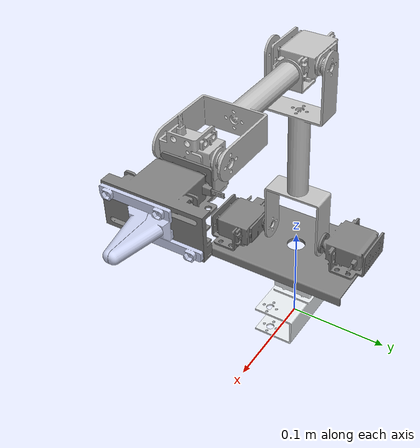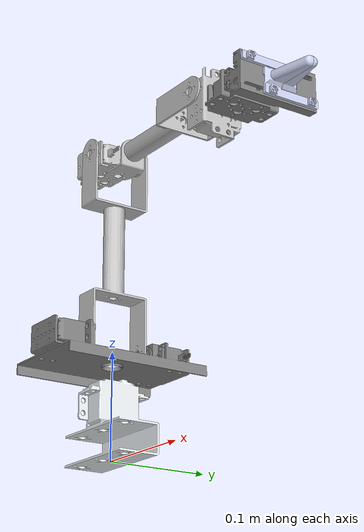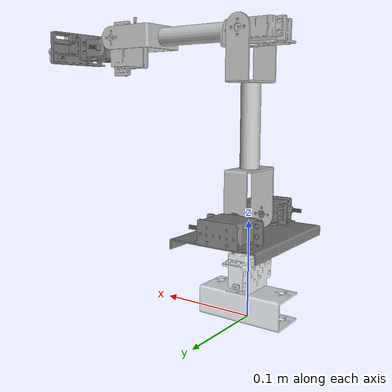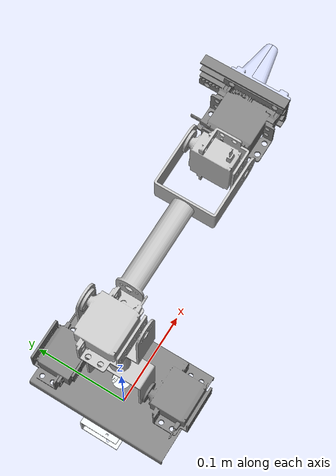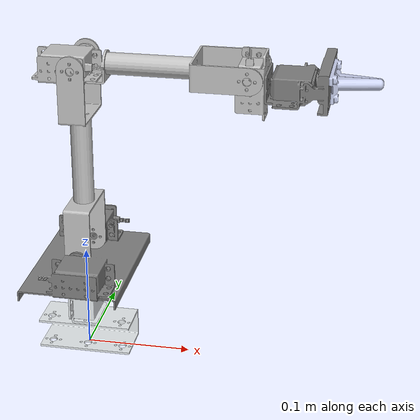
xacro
<?xml version="1.0"?>
<robot xmlns:xacro="http://www.ros.org/wiki/xacro" name="chessaton">
    <xacro:arg name="initial_positions_file" default="initial_positions.yaml" />

    <!-- Import chessaton urdf file -->
    <xacro:include filename="$(find chessaton_description)/urdf/chessaton.urdf.xacro" />

    <!-- Import control_xacro -->
    <xacro:include filename="chessaton.ros2_control.xacro" />

    <xacro:chessaton_ros2_control name="FakeSystem" initial_positions_file="$(arg initial_positions_file)"/>

</robot>

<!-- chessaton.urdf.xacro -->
<robot xmlns:xacro="http://www.ros.org/wiki/xacro"
    xmlns:sensor="http://playerstage.sourceforge.net/gazebo/xmlschema/#sensor"
    xmlns:controller="http://playerstage.sourceforge.net/gazebo/xmlschema/#controller"
    xmlns:interface="http://playerstage.sourceforge.net/gazebo/xmlschema/#interface"
    name="chessaton">

    <xacro:include filename="$(find chessaton_description)/urdf/chessaton_include.xacro" />
    <xacro:include filename="$(find chessaton_description)/urdf/chessaton_gazebo.xacro" />
    <xacro:include filename="$(find chessaton_description)/urdf/chessaton.ros2_control" />
    <xacro:include filename="$(find chessaton_description)/urdf/chessaton_hand.xacro" />
    <xacro:include filename="$(find chessaton_description)/urdf/sensors/camera.urdf.xacro" />

    <!-- Parameters -->
    <!-- Name of the robot (mandatory) -->
    <xacro:arg name="name" default="chessaton"/>
    <!-- Prefix for all entities -->
    <xacro:arg name="prefix" default="chessaton_"/>
    <!-- Flag to enable default gripper -->
    <xacro:arg name="gripper" default="true" />
    <xacro:arg name="virtual_dof" default="true" />
    <!-- Flag to enable camera -->
    <xacro:arg name="use_camera" default="false" />
    <!-- ros2_control -->
    <!-- Flag to enable ros2 controllers for manipulator -->
    <xacro:arg name="ros2_control" default="true"/>
    <!-- The ros2_control plugin that should be loaded for the manipulator ('fake', 'gz', 'real' or custom) -->
    <xacro:arg name="ros2_control_plugin" default="gz"/>
    <!-- The output control command interface provided by ros2_control ('position', 'velocity', 'effort' or certain combinations 'position,velocity') -->
    <xacro:arg name="ros2_control_command_interface" default="position"/>
    <!-- The filepath to parameters of ROS 2 controllers -->
    <xacro:arg name="ros2_controller_parameters" default="$(find chessaton_description)/config/controllers_$(arg ros2_control_command_interface).yaml"/>
    <!-- Flag to preserve fixed joints and prevent lumping when generating SDF for Gazebo -->
    <xacro:arg name="gazebo_preserve_fixed_joint" default="false"/>

    <link name="world"></link>

    <joint name="virtual_joint" type="fixed">
        <origin xyz="0 0 0" rpy="0 0 0" />
        <parent link="world" />
        <child link="chessaton_link0" />
    </joint>

    <link name="chessaton_link0">
        <visual>
            <origin xyz="0 0 0" rpy="0 0 0" />
            <geometry>
              <mesh filename="file://$(find chessaton_description)/meshes/chessaton_link0.STL" />
            </geometry>
            <material name="color_link0" />
        </visual>

        <collision>
          <origin xyz="0 0 0" rpy="0 0 0" />
          <geometry>
            <mesh filename="file://$(find chessaton_description)/meshes/chessaton_link0.STL" />
          </geometry>
        </collision>

        <inertial>
            <origin xyz="-0.00088323 -3.593E-07 0.021799" rpy="0 0 0" />
            <mass value="0.35" />
            <inertia
                ixx="0.00040857"
                ixy="-1.2568E-09"
                ixz="-4.0915E-09"
                iyy="0.00041214"
                iyz="1.5948E-10"
                izz="0.00079973" />
        </inertial>
    </link>

    <joint name="chessaton_joint1" type="revolute">
        <origin xyz="0 0 0.07184" rpy="0 0 0" />
        <parent link="chessaton_link0" />
        <child link="chessaton_link1" />
        <axis xyz="0 0 -1" />
		<dynamics damping="0.1" friction="0.1" />
        <limit lower="${-pi/2}" upper="${pi/2}" effort="0" velocity="0.3" />
    </joint>

    <link name="chessaton_link1">
        <visual>
          <origin xyz="0 0 0" rpy="0 0 0" />
          <geometry>
            <mesh filename="file://$(find chessaton_description)/meshes/chessaton_link1.STL" />
          </geometry>
          <material name="color_link1" />
        </visual>

        <collision>
          <origin xyz="0 0 0" rpy="0 0 0" />
          <geometry>
            <mesh filename="file://$(find chessaton_description)/meshes/chessaton_link1.STL" />
          </geometry>
        </collision>

        <inertial>
            <origin xyz="-2.4829E-06 1.8095E-11 0.025578" rpy="0 0 0" />
            <mass value="0.116" />
            <inertia
              ixx="5.4663E-05"
              ixy="-1.3316E-07"
              ixz="3.3526E-14"
              iyy="4.2517E-05"
              iyz="-8.2983E-14"
              izz="8.9443E-05" />
        </inertial>
    </link>

	<joint name="chessaton_joint2" type="revolute">
		<origin xyz="0 1.29770906784333E-05 0.0305688591051693" rpy="0 0 0" />
		<parent link="chessaton_link1" />
		<child link="chessaton_link2" />
		<axis xyz="0 1 0" />
		<dynamics damping="0.1" friction="0.1" />
		<limit lower="${-pi/2}" upper="${pi/2}" effort="0" velocity="0.3" />
	</joint>

    <link name="chessaton_link2">
        <visual>
            <origin xyz="0 0 0" rpy="0 0 0" />
            <geometry>
              <mesh filename="file://$(find chessaton_description)/meshes/chessaton_link2.STL" />
            </geometry>
            <material name="color_link2" />
        </visual>

        <inertial>
            <origin xyz="-2.3338E-06 4.5723E-05 0.093503" rpy="0 0 0" />
            <mass value="0.071" />
            <inertia
              ixx="6.1321E-05"
              ixy="-6.9447E-10"
              ixz="4.4166E-12"
              iyy="3.639E-05"
              iyz="-4.4751E-13"
              izz="3.1036E-05" />
        </inertial>

        <collision>
          <origin xyz="0 0 0" rpy="0 0 0" />
          <geometry>
            <mesh filename="file://$(find chessaton_description)/meshes/chessaton_link2.STL" />
          </geometry>
        </collision>
    </link>

	<joint name="chessaton_joint3" type="revolute">
	  	<origin xyz="0 0.025345720651074 0.187006906655083" rpy="0 0 0" />
	  	<parent link="chessaton_link2" />
	  	<child link="chessaton_link3" />
	  	<axis xyz="0 1 0" />
	  	<dynamics damping="0.1" friction="0.1" />
	  	<limit lower="${-pi/2}" upper="${pi/2}" effort="0" velocity="0.3" />
	</joint>

	<link name="chessaton_link3">
		<visual>
		  <origin xyz="0 0 0" rpy="0 0 0" />
		  <geometry>
		    <mesh filename="file://$(find chessaton_description)/meshes/chessaton_link3.STL" />
		  </geometry>
		  <material name="color_link3" />
		</visual>

		<collision>
		  <origin xyz="0 0 0" rpy="0 0 0" />
		  <geometry>
		    <mesh filename="file://$(find chessaton_description)/meshes/chessaton_link3.STL" />
		  </geometry>
		</collision>

		<inertial>
            <origin xyz="0.041523 -0.024547 -0.0018439" rpy="0 0 0" />
            <mass value="0.01" />
            <inertia
              ixx="2.455E-05"
              ixy="-7.247E-09"
              ixz="-2.7697E-07"
              iyy="3.4978E-05"
              iyz="4.524E-07"
              izz="5.1335E-05" />
        </inertial>
	</link>

	<joint name="chessaton_joint4" type="revolute">
	    <origin xyz="0.157407990853242 0.00282292319687479 -0.000108863252950619" rpy="0 0 0" />
	    <parent link="chessaton_link3" />
	    <child link="chessaton_link4" />
	    <axis xyz="0 1 0" />
		<dynamics damping="0.1" friction="0.1" />
	    <limit lower="${-pi/2}" upper="${pi/2}" effort="0" velocity="0.3" />
	</joint>

	<link name="chessaton_link4">
		<visual>
		  <origin xyz="0 0 0" rpy="0 0 0" />
		  <geometry>
		    <mesh filename="file://$(find chessaton_description)/meshes/chessaton_link4.STL" />
		  </geometry>
		  <material name="color_link4" />
		</visual>

		<collision>
		  <origin xyz="0 0 0" rpy="0 0 0" />
		  <geometry>
		    <mesh filename="file://$(find chessaton_description)/meshes/chessaton_link4.STL" />
		  </geometry>
		</collision>

        <inertial>
            <origin xyz="0.0024706 -0.026918 -0.010053" rpy="0 0 0" />
            <mass value="0.0465" />
            <inertia
              ixx="1.4407E-05"
              ixy="-4.5338E-07"
              ixz="-1.5306E-09"
              iyy="1.0461E-05"
              iyz="-4.0782E-09"
              izz="7.7123E-06" />
        </inertial>
	</link>

	<joint name="gripper_joint" type="fixed">
	  <origin xyz="0.070608507146197 -0.0126359232516508 -0.0087074752469517" rpy="0 0 0" />
	  <parent link="chessaton_link4" />
	  <child link="chessaton_gripper" />
	  <axis xyz="0 0 0" />
	</joint>

    <xacro:chessaton_hand
        virtual_dof="$(arg virtual_dof)"
    />

    <xacro:if value="$(arg use_camera)">
        <xacro:sensor_camera />
    </xacro:if>

      <!-- Transmission macro -->

  <!-- Transmission macro -->

    <xacro:gz_ros2_control
        ros2_controller_parameters="$(arg ros2_controller_parameters)"
    />

    <xacro:mein_ros2_control
        ros2_control="$(arg ros2_control)"
        prefix="$(arg prefix)"
        ros2_control_plugin="$(arg ros2_control_plugin)"
        ros2_control_command_interface="$(arg ros2_control_command_interface)"
        ros2_controller_parameters="$(arg ros2_controller_parameters)"
    />

</robot>

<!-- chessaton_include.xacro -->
<robot xmlns:xacro="http://www.ros.org/wiki/xacro" >

    <!-- Specify some colours -->
    <material name="metal">
        <color rgba="0.79216 0.81961 0.93333 1" />
    </material>
    <material name="white">
        <color rgba="1 1 1 1"/>
    </material>

    <material name="orange">
        <color rgba="1 0.3 0.1 1"/>
    </material>

    <material name="blue">
        <color rgba="0.2 0.2 1 1"/>
    </material>

    <material name="color_link0">
        <color rgba="0.89804 0.91765 0.92941 1" />
    </material>

    <material name="color_link1">
        <color rgba="0.49804 0.49804 0.49804 1" />
    </material>

    <material name="color_link2">
        <color rgba="0.752941176470588 0.752941176470588 0.752941176470588 1" />
    </material>

    <material name="color_link3">
        <color rgba="0.752941176470588 0.752941176470588 0.752941176470588 1" />
    </material>

    <material name="color_link4">
        <color rgba="0.75294 0.75294 0.75294 1" />
    </material>

    <material name="color_gripper">
        <color rgba="0.49804 0.49804 0.49804 1" />
    </material>

    <material name="color_gripper_lfinger">
        <color rgba="0.792156862745098 0.819607843137255 0.933333333333333 1" />
    </material>

    <material name="color_gripper_rfinger">
        <color rgba="0.79216 0.81961 0.93333 1" />
    </material>
</robot>

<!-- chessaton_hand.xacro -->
<robot xmlns:xacro="http://www.ros.org/wiki/xacro"
    xmlns:sensor="http://playerstage.sourceforge.net/gazebo/xmlschema/#sensor"
    xmlns:controller="http://playerstage.sourceforge.net/gazebo/xmlschema/#controller"
    xmlns:interface="http://playerstage.sourceforge.net/gazebo/xmlschema/#interface"
    name="chessaton">
    <xacro:macro name="chessaton_hand" params="
        virtual_dof
    ">
    	<link name="chessaton_gripper">
    		<visual>
    			<origin xyz="0 0 0" rpy="0 0 0" />
    			<geometry>
    			  <mesh filename="file://$(find chessaton_description)/meshes/chessaton_gripper.STL" />
    			</geometry>
    			<material name="color_gripper" />
    		</visual>

    		<collision>
    			<origin xyz="0 0 0" rpy="0 0 0" />
    			<geometry>
    				<mesh filename="file://$(find chessaton_description)/meshes/chessaton_gripper.STL" />
    			</geometry>
    		</collision>

            <inertial>
                <origin xyz="-0.02661 -0.0071 -0.001771" rpy="0 0 0" />
                <mass value="0.066" />
                <inertia
                  ixx="1.9409E-05"
                  ixy="-4.403E-09"
                  ixz="4.5353E-07"
                  iyy="9.1625E-06"
                  iyz="-1.5432E-09"
                  izz="2.2082E-05" />
            </inertial>
    	</link>

    	<joint name="left_finger_joint" type="prismatic">
    		<origin xyz="0 0 0" rpy="0 0 0" />
    		<parent link="chessaton_gripper" />
    		<child link="left_finger" />
    		<axis xyz="0 1 0" />
    		<dynamics damping="1.0" friction="1.0" />
    		<limit lower="0" upper="0.023" effort="100" velocity="0.01" />
    	</joint>

    	<link name="left_finger">
        	<visual>
        	  <origin xyz="0 0 0" rpy="0 0 0" />
        	  <geometry>
        	    <mesh filename="file://$(find chessaton_description)/meshes/left_finger.STL" />
        	  </geometry>
        	  <material name="color_gripper_lfinger" />
        	</visual>

        	<collision>
        	  <origin xyz="0 0 0" rpy="0 0 0" />
        	  <geometry>
        	    <mesh filename="file://$(find chessaton_description)/meshes/left_finger.STL" />
        	  </geometry>
        	</collision>

            <inertial>
                <origin
                  xyz="0.012703 0.0015457 0.0030231"
                  rpy="0 0 0" />
                <mass
                  value="0.006" />
                <inertia
                  ixx="8.3567E-07"
                  ixy="-1.3337E-07"
                  ixz="1.7187E-07"
                  iyy="1.1252E-06"
                  iyz="1.949E-07"
                  izz="1.5628E-06" />
            </inertial>
    	</link>

    	<joint name="right_finger_joint" type="prismatic">
    		<origin xyz="0 0 0" rpy="0 0 0" />
    		<parent link="chessaton_gripper" />
    		<child link="right_finger" />
    		<axis xyz="0 1 0" />
    		<dynamics damping="1.0" friction="1.0" />
    		<limit lower="-0.023" upper="0" effort="100" velocity="0.01" />
    	</joint>

    	<link name="right_finger">
    		<visual>
    		  <origin xyz="0 0 0" rpy="0 0 0" />
    		  <geometry>
    		    <mesh filename="file://$(find chessaton_description)/meshes/right_finger.STL" />
    		  </geometry>
    		  <material name="color_gripper_rfinger" />
    		</visual>

    		<collision>
    		  <origin xyz="0 0 0" rpy="0 0 0" />
    		  <geometry>
    		    <mesh filename="file://$(find chessaton_description)/meshes/right_finger.STL" />
    		  </geometry>
    		</collision>
            <inertial>
                <origin xyz="0.012704 -0.0015462 -0.0030231" rpy="0 0 0" />
                <mass value="0.006" />
                <inertia
                  ixx="8.357E-07"
                  ixy="1.3337E-07"
                  ixz="-1.7186E-07"
                  iyy="1.1252E-06"
                  iyz="1.9491E-07"
                  izz="1.5629E-06" />
            </inertial>
    	</link>

        <xacro:if value="${virtual_dof}">
            <joint name="chessaton_hand_tcp_roll_virtual_joint" type="revolute">
                <parent link="chessaton_gripper"/>
                <child link="chessaton_hand_tcp_roll"/>
                <origin rpy="0 0 0" xyz="0.03 0 0"/>
                <axis xyz="-1 0 0" />
    		    <dynamics damping="1.0" friction="1.0" />
    	        <limit lower="${-pi/2}" upper="${pi/2}" effort="0" velocity="6" />
            </joint>

            <link name="chessaton_hand_tcp_roll">
                <inertial>
                    <origin xyz="0.011394 -0.0086324 -0.005" rpy="0 0 0" />
                    <mass value="0.0088" />
                    <inertia
                      ixx="6.0646E-07"
                      ixy="-1.4141E-07"
                      ixz="1.2142E-21"
                      iyy="9.0397E-07"
                      iyz="7.2151E-22"
                      izz="8.4377E-07" />
                </inertial>
            </link>

            <link name="chessaton_hand_tcp_yaw">
                <inertial>
                    <origin xyz="0.011394 -0.0086324 -0.005" rpy="0 0 0" />
                    <mass value="0.0088" />
                    <inertia
                      ixx="6.0646E-07"
                      ixy="-1.4141E-07"
                      ixz="1.2142E-21"
                      iyy="9.0397E-07"
                      iyz="7.2151E-22"
                      izz="8.4377E-07" />
                </inertial>
            </link>
            <joint name="chessaton_hand_tcp_yaw_virtual_joint" type="revolute">
                <parent link="chessaton_hand_tcp_roll"/>
                <child link="chessaton_hand_tcp_yaw"/>
                <origin rpy="0 0 0" xyz="0 0 0"/>
                <axis xyz="0 0 -1" />
    		<dynamics damping="1.0" friction="1.0" />
    	     <limit lower="${-pi/2}" upper="${pi/2}" effort="0" velocity="6" />
            </joint>

            <link name="chessaton_hand_tcp">
                <inertial>
                    <origin xyz="0.011394 -0.0086324 -0.005" rpy="0 0 0" />
                    <mass value="0.0088" />
                    <inertia
                      ixx="6.0646E-07"
                      ixy="-1.4141E-07"
                      ixz="1.2142E-21"
                      iyy="9.0397E-07"
                      iyz="7.2151E-22"
                      izz="8.4377E-07" />
                </inertial>
            </link>
            <joint name="chessaton_hand_tcp_virtual_joint" type="fixed">
              <parent link="chessaton_hand_tcp_yaw"/>
              <child link="chessaton_hand_tcp"/>
              <origin rpy="0 0 0" xyz="0 0 0"/>
            </joint>
        </xacro:if>
        <xacro:unless value="${virtual_dof}">
            <link name="chessaton_hand_tcp">
                <inertial>
                    <origin xyz="0.011394 -0.0086324 -0.005" rpy="0 0 0" />
                    <mass value="0.0088" />
                    <inertia
                      ixx="6.0646E-07"
                      ixy="-1.4141E-07"
                      ixz="1.2142E-21"
                      iyy="9.0397E-07"
                      iyz="7.2151E-22"
                      izz="8.4377E-07" />
                </inertial>
            </link>
            <joint name="chessaton_hand_tcp_virtual_joint" type="fixed">
              <parent link="chessaton_gripper"/>
              <child link="chessaton_hand_tcp"/>
              <origin rpy="0 0 0" xyz="0.03 0 0"/>
            </joint>
        </xacro:unless>
    </xacro:macro>
</robot>
